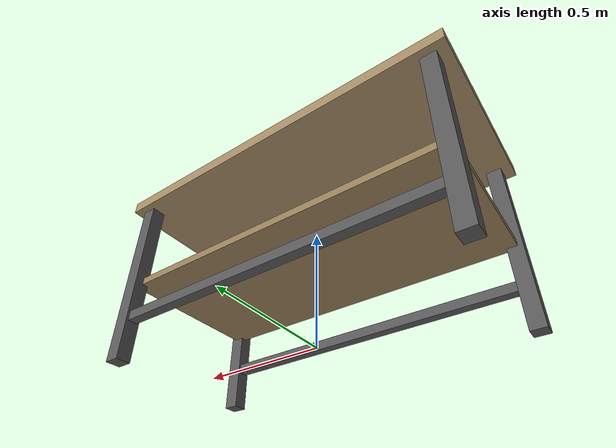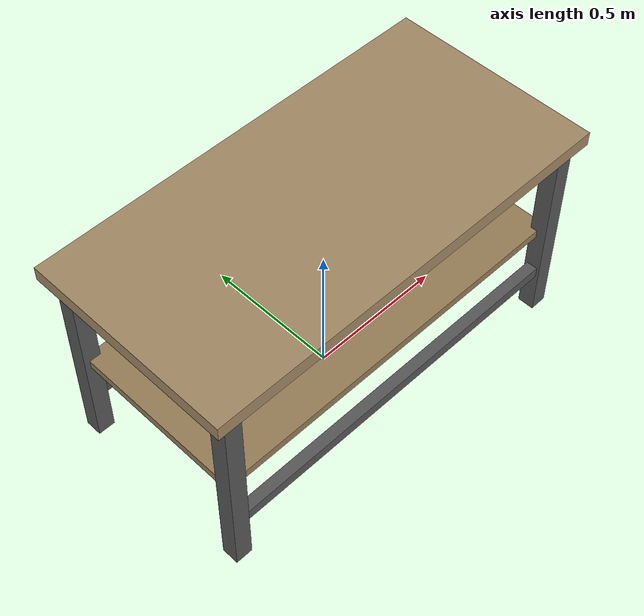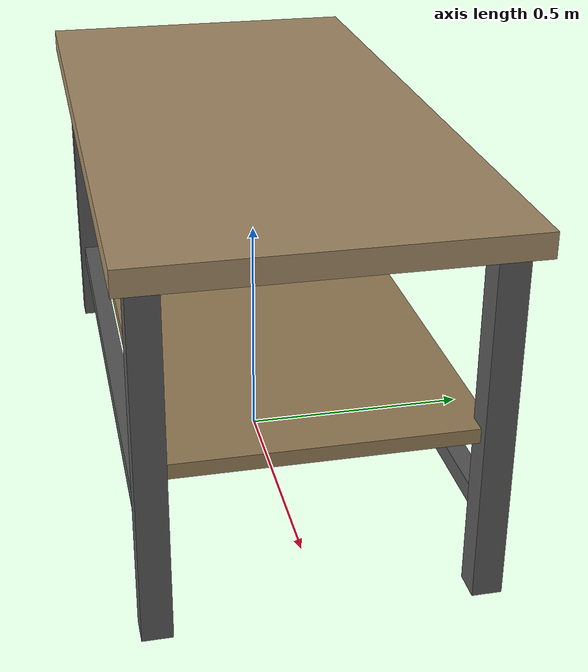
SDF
<?xml version="1.0"?>
<sdf version="1.8">
  <model name="work_table">
    <static>true</static>
    <link name="link">

      <!-- Tabletop -->
      <visual name="tabletop_visual">
        <pose>0 0 0.75 0 0 0</pose>
        <geometry>
          <box><size>1.5 0.75 0.05</size></box>
        </geometry>
        <material>
          <ambient>0.6 0.5 0.35 1</ambient>
          <diffuse>0.65 0.55 0.4 1</diffuse>
          <specular>0.1 0.1 0.1 1</specular>
        </material>
      </visual>
      <collision name="tabletop_collision">
        <pose>0 0 0.75 0 0 0</pose>
        <geometry>
          <box><size>1.5 0.75 0.05</size></box>
        </geometry>
      </collision>

      <!-- Leg front-left -->
      <visual name="leg_fl_visual">
        <pose>-0.68 -0.32 0.36 0 0 0</pose>
        <geometry>
          <box><size>0.06 0.06 0.72</size></box>
        </geometry>
        <material>
          <ambient>0.3 0.3 0.3 1</ambient>
          <diffuse>0.35 0.35 0.35 1</diffuse>
        </material>
      </visual>
      <collision name="leg_fl_collision">
        <pose>-0.68 -0.32 0.36 0 0 0</pose>
        <geometry>
          <box><size>0.06 0.06 0.72</size></box>
        </geometry>
      </collision>

      <!-- Leg front-right -->
      <visual name="leg_fr_visual">
        <pose>0.68 -0.32 0.36 0 0 0</pose>
        <geometry>
          <box><size>0.06 0.06 0.72</size></box>
        </geometry>
        <material>
          <ambient>0.3 0.3 0.3 1</ambient>
          <diffuse>0.35 0.35 0.35 1</diffuse>
        </material>
      </visual>
      <collision name="leg_fr_collision">
        <pose>0.68 -0.32 0.36 0 0 0</pose>
        <geometry>
          <box><size>0.06 0.06 0.72</size></box>
        </geometry>
      </collision>

      <!-- Leg rear-left -->
      <visual name="leg_rl_visual">
        <pose>-0.68 0.32 0.36 0 0 0</pose>
        <geometry>
          <box><size>0.06 0.06 0.72</size></box>
        </geometry>
        <material>
          <ambient>0.3 0.3 0.3 1</ambient>
          <diffuse>0.35 0.35 0.35 1</diffuse>
        </material>
      </visual>
      <collision name="leg_rl_collision">
        <pose>-0.68 0.32 0.36 0 0 0</pose>
        <geometry>
          <box><size>0.06 0.06 0.72</size></box>
        </geometry>
      </collision>

      <!-- Leg rear-right -->
      <visual name="leg_rr_visual">
        <pose>0.68 0.32 0.36 0 0 0</pose>
        <geometry>
          <box><size>0.06 0.06 0.72</size></box>
        </geometry>
        <material>
          <ambient>0.3 0.3 0.3 1</ambient>
          <diffuse>0.35 0.35 0.35 1</diffuse>
        </material>
      </visual>
      <collision name="leg_rr_collision">
        <pose>0.68 0.32 0.36 0 0 0</pose>
        <geometry>
          <box><size>0.06 0.06 0.72</size></box>
        </geometry>
      </collision>

      <!-- Lower shelf -->
      <visual name="lower_shelf_visual">
        <pose>0 0 0.35 0 0 0</pose>
        <geometry>
          <box><size>1.38 0.63 0.03</size></box>
        </geometry>
        <material>
          <ambient>0.55 0.45 0.3 1</ambient>
          <diffuse>0.6 0.5 0.35 1</diffuse>
        </material>
      </visual>
      <collision name="lower_shelf_collision">
        <pose>0 0 0.35 0 0 0</pose>
        <geometry>
          <box><size>1.38 0.63 0.03</size></box>
        </geometry>
      </collision>

      <!-- Front cross-brace -->
      <visual name="brace_front_visual">
        <pose>0 -0.32 0.18 0 0 0</pose>
        <geometry>
          <box><size>1.38 0.04 0.04</size></box>
        </geometry>
        <material>
          <ambient>0.3 0.3 0.3 1</ambient>
          <diffuse>0.35 0.35 0.35 1</diffuse>
        </material>
      </visual>

      <!-- Rear cross-brace -->
      <visual name="brace_rear_visual">
        <pose>0 0.32 0.18 0 0 0</pose>
        <geometry>
          <box><size>1.38 0.04 0.04</size></box>
        </geometry>
        <material>
          <ambient>0.3 0.3 0.3 1</ambient>
          <diffuse>0.35 0.35 0.35 1</diffuse>
        </material>
      </visual>

    </link>
  </model>
</sdf>
